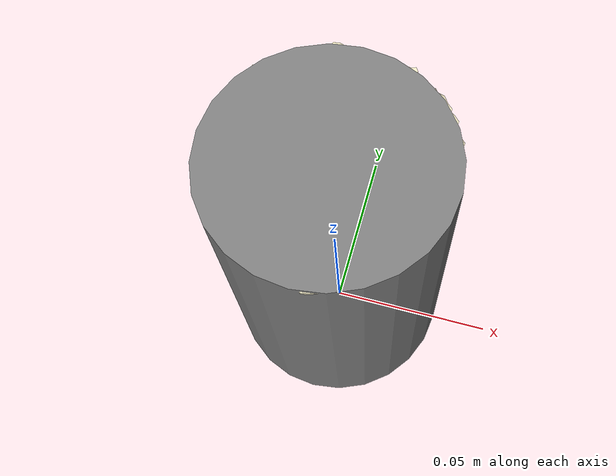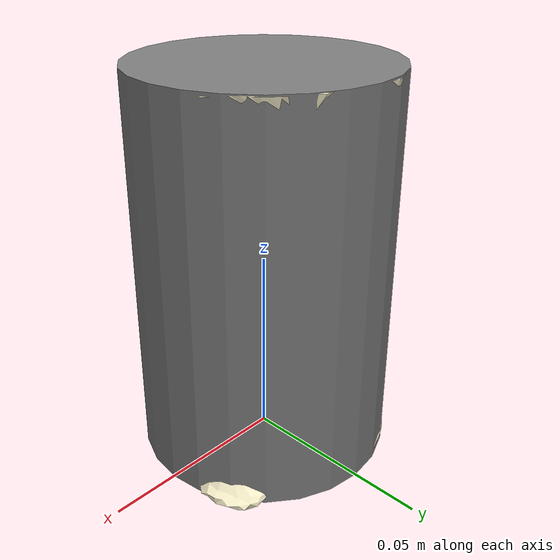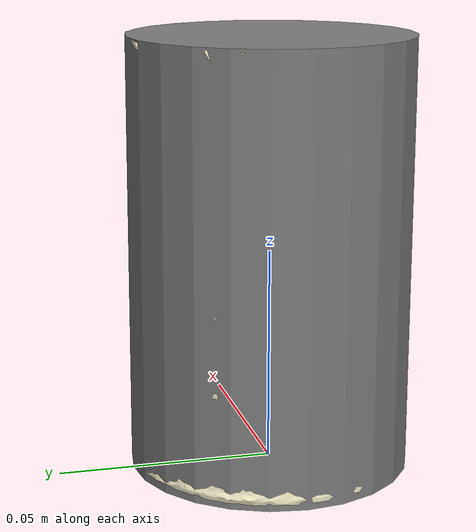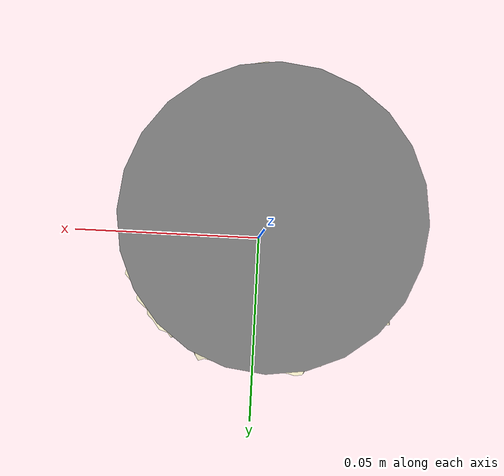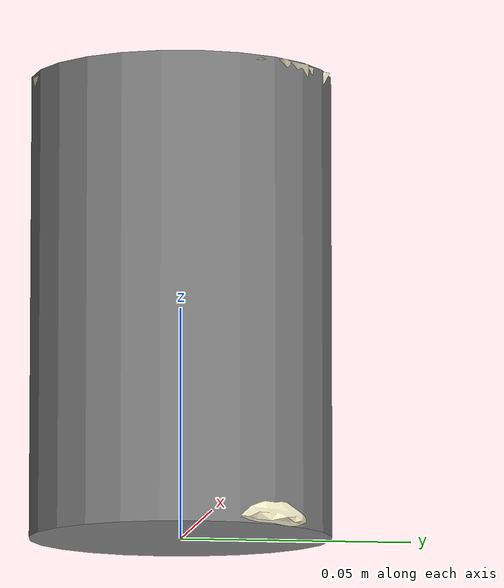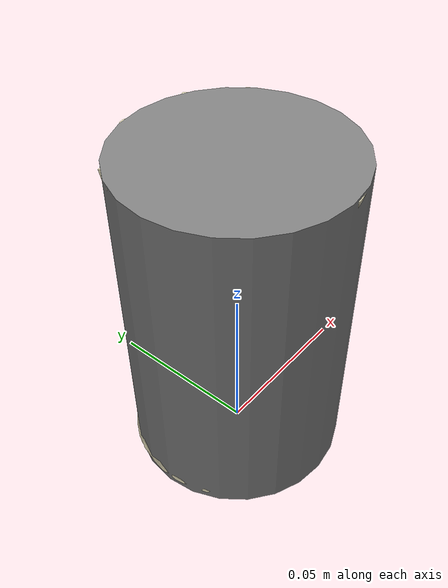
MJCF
<mujoco model="parmesan_cheese">
  <asset>
    <material name="parmesan_cheese_mat" rgba="0.95 0.92 0.78 1" specular="0.3" shininess="0.1"/>
    <mesh name="parmesan_cheese_vis" file="parmesan_cheese_libero.obj" scale="1 1 1"/>
  </asset>
  <worldbody>
    <body>
      <body name="object">
        <geom type="mesh" mesh="parmesan_cheese_vis" material="parmesan_cheese_mat" group="1" contype="0" conaffinity="0"/>
        <geom name="parmesan_cheese_collision" type="cylinder" size="0.03266 0.05000" pos="0 0 0.05000" group="0" density="100" friction="0.95 0.3 0.1" solimp="0.998 0.998 0.001" solref="0.001 1"/>
      </body>
      <site rgba="0 0 0 0" size="0.005" pos="0 0 0" name="bottom_site"/>
      <site rgba="0 0 0 0" size="0.005" pos="0 0 0.10000" name="top_site"/>
      <site rgba="0 0 0 0" size="0.005" pos="0.03266 0 0" name="horizontal_radius_site"/>
    </body>
  </worldbody>
</mujoco>
